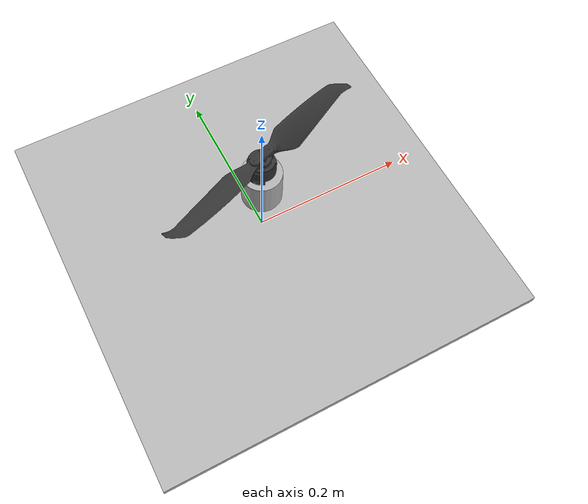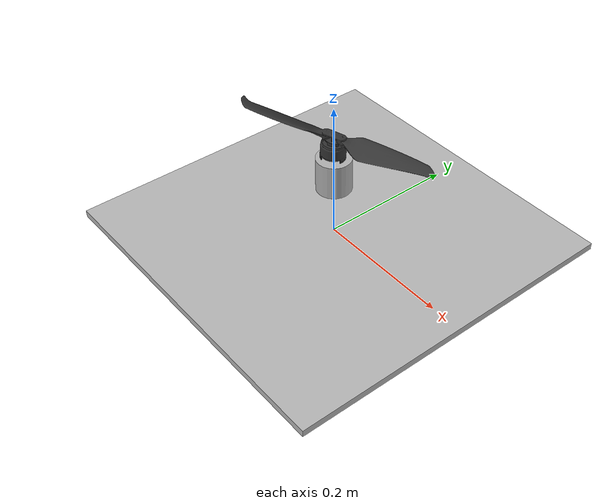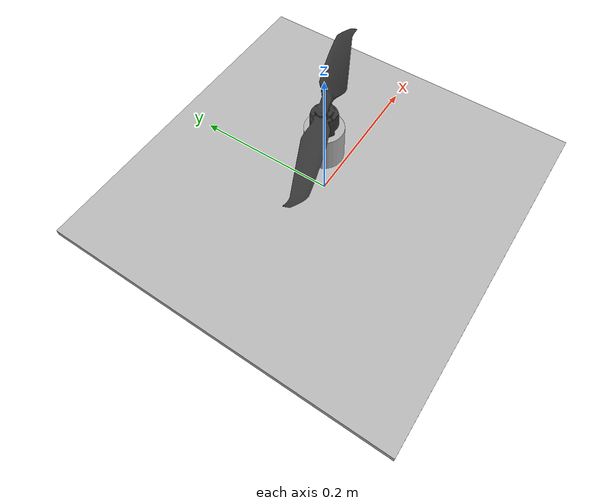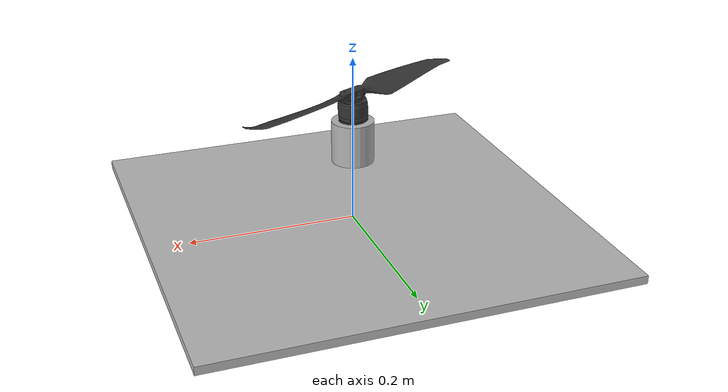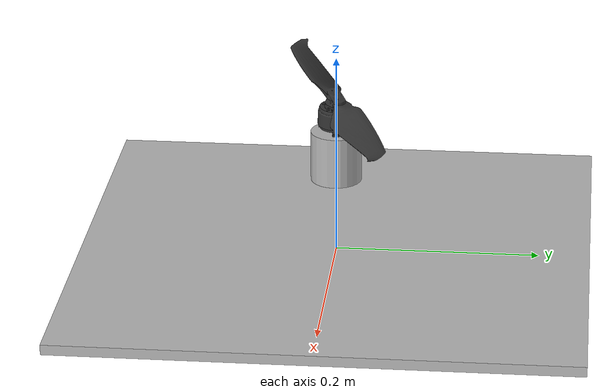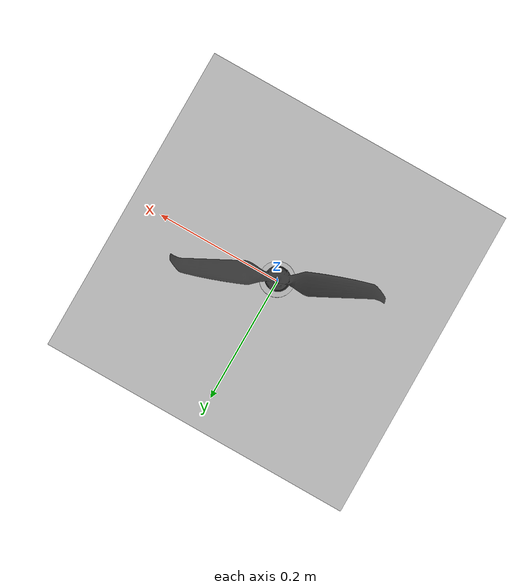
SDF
<?xml version="1.0"?>
<sdf version="1.6">
  <world name="default">
    <light type="directional" name="sun">
      <cast_shadows>true</cast_shadows>
      <pose>0 0 10 0 0 0</pose>
      <diffuse>1 1 1 1</diffuse>
      <specular>0.5 0.5 0.5 1</specular>
      <attenuation>
        <range>1000</range>
        <constant>0.9</constant>
        <linear>0.01</linear>
        <quadratic>0.001</quadratic>
      </attenuation>
      <direction>-0.5 0.1 -0.9</direction>
    </light>
    <model name="motor_model_demo">
      <pose>0 0 0 0 0 0</pose>
      <link name="base_link">
        <pose>0.0 0.0 0.0 0 0 0</pose>
        <inertial>
          <inertia>
            <ixx>2.501</ixx>
            <ixy>0</ixy>
            <ixz>0</ixz>
            <iyy>2.501</iyy>
            <iyz>0</iyz>
            <izz>5</izz>
          </inertia>
          <mass>120.0</mass>
        </inertial>
        <visual name="base_visual">
          <pose>0.0 0.0 0.0 0 0 0</pose>
          <geometry>
            <box>
              <size>0.5 0.5 0.01</size>
            </box>
          </geometry>
        </visual>
        <collision name="base_collision">
          <pose>0.0 0.0 0.0 0 0 0</pose>
          <geometry>
            <box>
              <size>0.5 0.5 0.01</size>
            </box>
          </geometry>
        </collision>
      </link>
      <!-- Motor Housing -->
      <link name="motor_housing">
        <pose>0.0 0.0 0.1 0 0 0</pose>
        <inertial>
          <inertia>
            <ixx>0.0001</ixx>
            <ixy>0</ixy>
            <ixz>0</ixz>
            <iyy>0.0001</iyy>
            <iyz>0</iyz>
            <izz>0.0001</izz>
          </inertia>
          <mass>0.2</mass>
        </inertial>
        <visual name="motor_visual">
          <geometry>
            <cylinder>
              <radius>0.025</radius>
              <length>0.05</length>
            </cylinder>
          </geometry>
          <material>
            <ambient>0.3 0.3 0.3 1</ambient>
            <diffuse>0.7 0.7 0.7 1</diffuse>
          </material>
        </visual>
        <collision name="motor_collision">
          <geometry>
            <cylinder>
              <radius>0.025</radius>
              <length>0.05</length>
            </cylinder>
          </geometry>
        </collision>
      </link>

      <!-- Propeller -->
      <link name="propeller">
        <pose>0.0 0.0 0.13 0 0 0</pose>
        <inertial>
          <inertia>
            <ixx>0.00001</ixx>
            <ixy>0</ixy>
            <ixz>0</ixz>
            <iyy>0.00025</iyy>
            <iyz>0</iyz>
            <izz>0.00025</izz>
          </inertia>
          <mass>0.05</mass>
        </inertial>
        <visual name="prop_visual">
          <geometry>
            <mesh>
              <uri>model://iris_with_standoffs/meshes/iris_prop_ccw.dae</uri>
              <scale>1 1 1</scale>
            </mesh>
          </geometry>
          <material>
            <ambient>0.1 0.1 0.1 1</ambient>
            <diffuse>0.2 0.2 0.2 1</diffuse>
          </material>
        </visual>
        <collision name="prop_collision">
          <geometry>
            <cylinder>
              <radius>0.128</radius>
              <length>0.005</length>
            </cylinder>
          </geometry>
        </collision>
      </link>

      <joint name="world_fixed" type="fixed">
        <parent>world</parent>
        <child>base_link</child>
      </joint>

      <!-- Motor housing to base joint -->
      <joint name="motor_mount" type="fixed">
        <parent>base_link</parent>
        <child>motor_housing</child>
      </joint>

      <!-- Propeller to motor joint -->
      <joint name="joint_0" type="revolute">
        <pose>0 0 0 0 0 0</pose>
        <parent>motor_housing</parent>
        <child>propeller</child>
        <axis>
          <xyz>0 0 1</xyz>
          <dynamics>
            <damping>1.0e-5</damping>
          </dynamics>
          <limit>
            <lower>-1e+16</lower>
            <upper>1e+16</upper>
          </limit>
        </axis>
      </joint>

      <plugin filename="gz-sim-lift-drag-system"
        name="gz::sim::systems::LiftDrag">
        <a0>0.3</a0>
        <alpha_stall>1.4</alpha_stall>
        <cla>4.2500</cla>
        <cda>0.10</cda>
        <cma>0.0</cma>
        <cla_stall>-0.025</cla_stall>
        <cda_stall>0.0</cda_stall>
        <cma_stall>0.0</cma_stall>
        <area>0.002</area>
        <air_density>1.2041</air_density>
        <cp>0.084 0 0</cp>
        <forward>0 1 0</forward>
        <upward>0 0 1</upward>
        <link_name>propeller</link_name>
      </plugin>

      <plugin filename="gz-sim-joint-state-publisher-system"
        name="gz::sim::systems::JointStatePublisher">
      </plugin>

      <plugin filename="MotorPlugin" name="MotorPlugin">

        <control channel="0">
          <joint_name>joint_0</joint_name>
          <voltage_bat>16</voltage_bat>
          <speed_constant>920</speed_constant>
          <resistance>0.115</resistance>
          <no_load_current>0.8</no_load_current>
          <cmd_topic>joint_0_topic</cmd_topic>
          <thermal_resistance>1.40</thermal_resistance>
          <thermal_capacitance>214.28</thermal_capacitance>
          <ambient_temperature>25.0</ambient_temperature>
        </control>
      </plugin>
    </model>
  </world>
</sdf>
